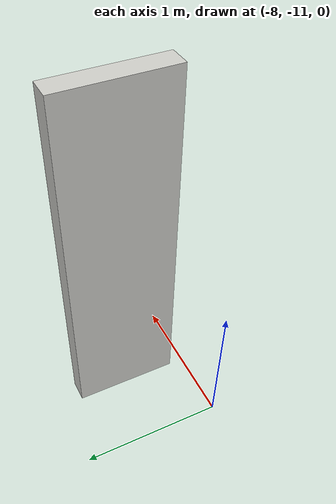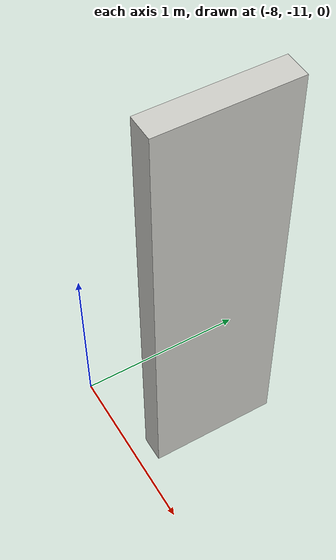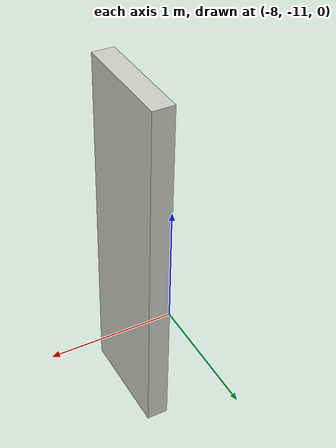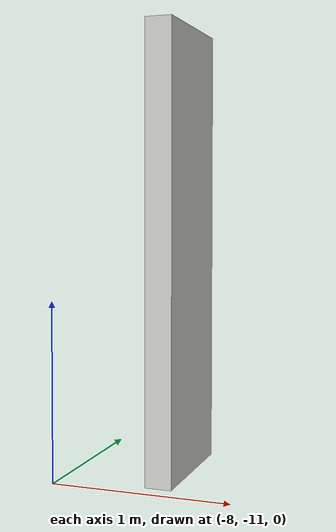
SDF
<?xml version='1.0'?>
<sdf version='1.7'>
  <model name='add_wall'>
    <pose>-3.7525 -5.4475 0 0 -0 0</pose>
    <link name='Wall_2'>
      <collision name='Wall_2_Collision'>
        <geometry>
          <box>
            <size>0.75 0.15 2.5</size>
          </box>
        </geometry>
        <pose>0 0 1.25 0 -0 0</pose>
      </collision>
      <visual name='Wall_2_Visual'>
        <pose>0 0 1.25 0 -0 0</pose>
        <geometry>
          <box>
            <size>0.75 0.15 2.5</size>
          </box>
        </geometry>
        <material>
          <script>
            <uri>file://media/materials/scripts/gazebo.material</uri>
            <name>Gazebo/CeilingTiled</name>
          </script>
          <ambient>1 1 1 1</ambient>
        </material>
        <meta>
          <layer>0</layer>
        </meta>
      </visual>
      <pose>-3.6775 -5.0725 0 0 -0 -1.5708</pose>
    </link>
    <static>1</static>
  </model>
</sdf>
